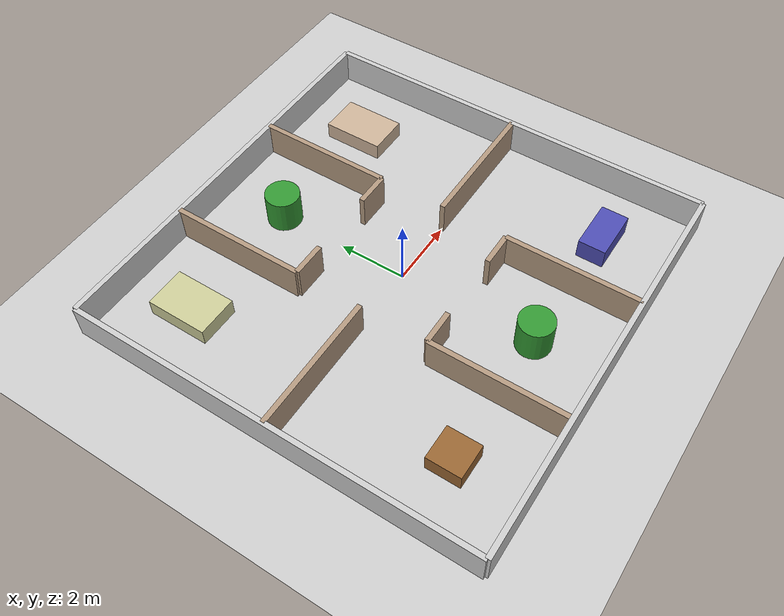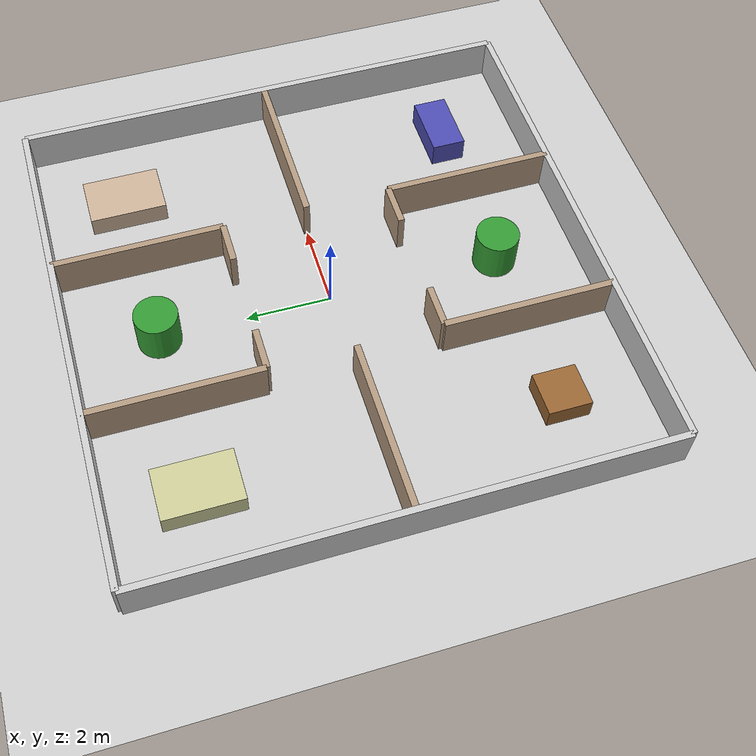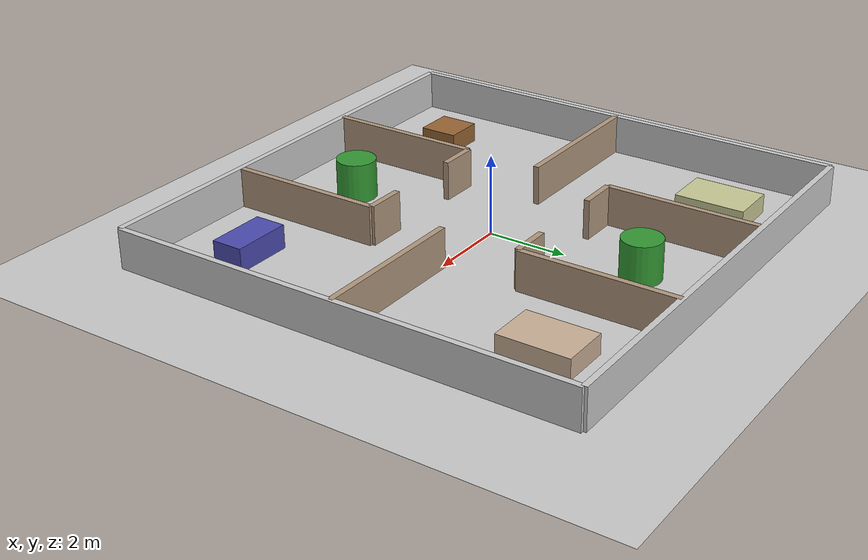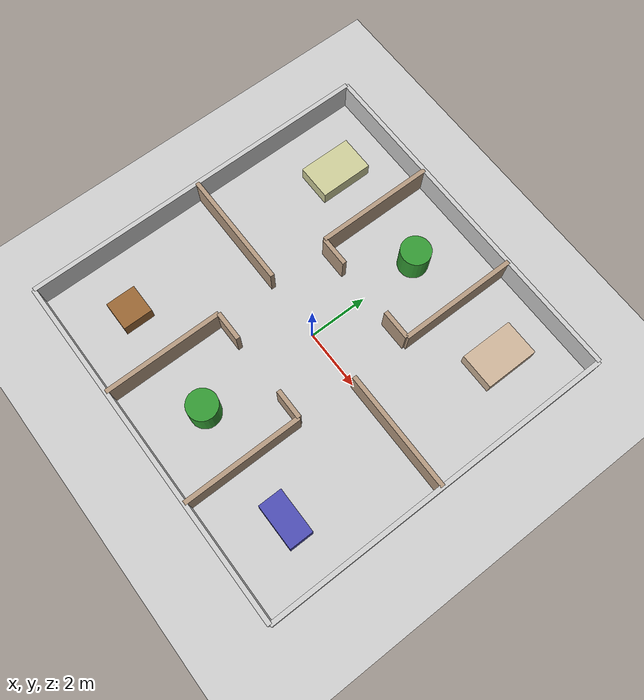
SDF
<?xml version="1.0" ?>
<sdf version="1.6">
  <world name="maison">

    <include><uri>model://sun</uri></include>
    <include><uri>model://ground_plane</uri></include>

    <!-- ========== MURS EXTERIEURS ========== -->
    <model name="mur_nord">
      <static>true</static>
      <pose>0 6 0.5 0 0 0</pose>
      <link name="link">
        <collision name="col"><geometry><box><size>12 0.15 1</size></box></geometry></collision>
        <visual name="vis"><geometry><box><size>12 0.15 1</size></box></geometry>
          <material><ambient>0.8 0.8 0.8 1</ambient></material>
        </visual>
      </link>
    </model>

    <model name="mur_sud">
      <static>true</static>
      <pose>0 -6 0.5 0 0 0</pose>
      <link name="link">
        <collision name="col"><geometry><box><size>12 0.15 1</size></box></geometry></collision>
        <visual name="vis"><geometry><box><size>12 0.15 1</size></box></geometry>
          <material><ambient>0.8 0.8 0.8 1</ambient></material>
        </visual>
      </link>
    </model>

    <model name="mur_ouest">
      <static>true</static>
      <pose>-6 0 0.5 0 0 0</pose>
      <link name="link">
        <collision name="col"><geometry><box><size>0.15 12 1</size></box></geometry></collision>
        <visual name="vis"><geometry><box><size>0.15 12 1</size></box></geometry>
          <material><ambient>0.8 0.8 0.8 1</ambient></material>
        </visual>
      </link>
    </model>

    <model name="mur_est">
      <static>true</static>
      <pose>6 0 0.5 0 0 0</pose>
      <link name="link">
        <collision name="col"><geometry><box><size>0.15 12 1</size></box></geometry></collision>
        <visual name="vis"><geometry><box><size>0.15 12 1</size></box></geometry>
          <material><ambient>0.8 0.8 0.8 1</ambient></material>
        </visual>
      </link>
    </model>

    <!-- ========== MURS INTERIEURS ========== -->
    <!-- Mur horizontal milieu avec porte large (2m) au centre -->
    <model name="mur_h_gauche">
      <static>true</static>
      <pose>-4 0 0.5 0 0 0</pose>
      <link name="link">
        <collision name="col"><geometry><box><size>4 0.15 1</size></box></geometry></collision>
        <visual name="vis"><geometry><box><size>4 0.15 1</size></box></geometry>
          <material><ambient>0.7 0.6 0.5 1</ambient></material>
        </visual>
      </link>
    </model>

    <model name="mur_h_droit">
      <static>true</static>
      <pose>4 0 0.5 0 0 0</pose>
      <link name="link">
        <collision name="col"><geometry><box><size>4 0.15 1</size></box></geometry></collision>
        <visual name="vis"><geometry><box><size>4 0.15 1</size></box></geometry>
          <material><ambient>0.7 0.6 0.5 1</ambient></material>
        </visual>
      </link>
    </model>

    <!-- Mur vertical gauche avec porte large (2m) -->
    <model name="mur_v_gauche_bas">
      <static>true</static>
      <pose>-2 -4 0.5 0 0 0</pose>
      <link name="link">
        <collision name="col"><geometry><box><size>0.15 4 1</size></box></geometry></collision>
        <visual name="vis"><geometry><box><size>0.15 4 1</size></box></geometry>
          <material><ambient>0.7 0.6 0.5 1</ambient></material>
        </visual>
      </link>
    </model>

    <model name="mur_v_gauche_haut">
      <static>true</static>
      <pose>-2 4 0.5 0 0 0</pose>
      <link name="link">
        <collision name="col"><geometry><box><size>0.15 4 1</size></box></geometry></collision>
        <visual name="vis"><geometry><box><size>0.15 4 1</size></box></geometry>
          <material><ambient>0.7 0.6 0.5 1</ambient></material>
        </visual>
      </link>
    </model>

    <!-- Mur vertical droit avec porte large (2m) -->
    <model name="mur_v_droit_bas">
      <static>true</static>
      <pose>2 -4 0.5 0 0 0</pose>
      <link name="link">
        <collision name="col"><geometry><box><size>0.15 4 1</size></box></geometry></collision>
        <visual name="vis"><geometry><box><size>0.15 4 1</size></box></geometry>
          <material><ambient>0.7 0.6 0.5 1</ambient></material>
        </visual>
      </link>
    </model>

    <model name="mur_v_droit_haut">
      <static>true</static>
      <pose>2 4 0.5 0 0 0</pose>
      <link name="link">
        <collision name="col"><geometry><box><size>0.15 4 1</size></box></geometry></collision>
        <visual name="vis"><geometry><box><size>0.15 4 1</size></box></geometry>
          <material><ambient>0.7 0.6 0.5 1</ambient></material>
        </visual>
      </link>
    </model>

    <model name="porte1">
      <static>true</static>
      <pose>-1.5 2 0.5 0 0 0</pose>
      <link name="link">
        <collision name="col"><geometry><box><size>1 0.15 1</size></box></geometry></collision>
        <visual name="vis"><geometry><box><size>1 0.15 1</size></box></geometry>
          <material><ambient>0.7 0.6 0.5 1</ambient></material>
        </visual>
      </link>
    </model>

    <model name="porte2">
      <static>true</static>
      <pose>-1.5 -2 0.5 0 0 0</pose>
      <link name="link">
        <collision name="col"><geometry><box><size>1 0.15 1</size></box></geometry></collision>
        <visual name="vis"><geometry><box><size>1 0.15 1</size></box></geometry>
          <material><ambient>0.7 0.6 0.5 1</ambient></material>
        </visual>
      </link>
    </model>

    <model name="porte3">
      <static>true</static>
      <pose>1.5 2 0.5 0 0 0</pose>
      <link name="link">
        <collision name="col"><geometry><box><size>1 0.15 1</size></box></geometry></collision>
        <visual name="vis"><geometry><box><size>1 0.15 1</size></box></geometry>
          <material><ambient>0.7 0.6 0.5 1</ambient></material>
        </visual>
      </link>
    </model>

    <model name="porte4">
      <static>true</static>
      <pose>1.5 -2 0.5 0 0 0</pose>
      <link name="link">
        <collision name="col"><geometry><box><size>1 0.15 1</size></box></geometry></collision>
        <visual name="vis"><geometry><box><size>1 0.15 1</size></box></geometry>
          <material><ambient>0.7 0.6 0.5 1</ambient></material>
        </visual>
      </link>
    </model>

    <!-- ========== MEUBLES (loin des murs) ========== -->
    <!-- Table salon bas gauche -->
    <model name="table">
      <static>true</static>
      <pose>-4 -4 0.25 0 0 0</pose>
      <link name="link">
        <collision name="col"><geometry><box><size>1 1 0.5</size></box></geometry></collision>
        <visual name="vis"><geometry><box><size>1 1 0.5</size></box></geometry>
          <material><ambient>0.6 0.4 0.2 1</ambient></material>
        </visual>
      </link>
    </model>

    <!-- Canape bas droit -->
    <model name="canape">
      <static>true</static>
      <pose>4 -4 0.3 0 0 0</pose>
      <link name="link">
        <collision name="col"><geometry><box><size>1.5 0.8 0.6</size></box></geometry></collision>
        <visual name="vis"><geometry><box><size>1.5 0.8 0.6</size></box></geometry>
          <material><ambient>0.3 0.3 0.7 1</ambient></material>
        </visual>
      </link>
    </model>

    <!-- Lit chambre haut gauche -->
    <model name="lit_1">
      <static>true</static>
      <pose>-4 4 0.25 0 0 0</pose>
      <link name="link">
        <collision name="col"><geometry><box><size>1.2 1.8 0.5</size></box></geometry></collision>
        <visual name="vis"><geometry><box><size>1.2 1.8 0.5</size></box></geometry>
          <material><ambient>0.8 0.8 0.6 1</ambient></material>
        </visual>
      </link>
    </model>

    <!-- Lit chambre haut droit -->
    <model name="lit_2">
      <static>true</static>
      <pose>4 4 0.25 0 0 0</pose>
      <link name="link">
        <collision name="col"><geometry><box><size>1.2 1.8 0.5</size></box></geometry></collision>
        <visual name="vis"><geometry><box><size>1.2 1.8 0.5</size></box></geometry>
          <material><ambient>0.8 0.7 0.6 1</ambient></material>
        </visual>
      </link>
    </model>

    <!-- Cylindre gauche couloir -->
    <model name="cylindre_gauche">
      <static>true</static>
      <pose>0 4 0.5 0 0 0</pose>
      <link name="link">
        <collision name="col">
          <geometry><cylinder><radius>0.5</radius><length>1</length></cylinder></geometry>
        </collision>
        <visual name="vis">
          <geometry><cylinder><radius>0.5</radius><length>1</length></cylinder></geometry>
          <material><ambient>0.2 0.6 0.2 1</ambient></material>
        </visual>
      </link>
    </model>

    <!-- Cylindre droit couloir -->
    <model name="cylindre_droit">
      <static>true</static>
      <pose>0 -4 0.5 0 0 0</pose>
      <link name="link">
        <collision name="col">
          <geometry><cylinder><radius>0.5</radius><length>1</length></cylinder></geometry>
        </collision>
        <visual name="vis">
          <geometry><cylinder><radius>0.5</radius><length>1</length></cylinder></geometry>
          <material><ambient>0.2 0.6 0.2 1</ambient></material>
        </visual>
      </link>
    </model>

  </world>
</sdf>
